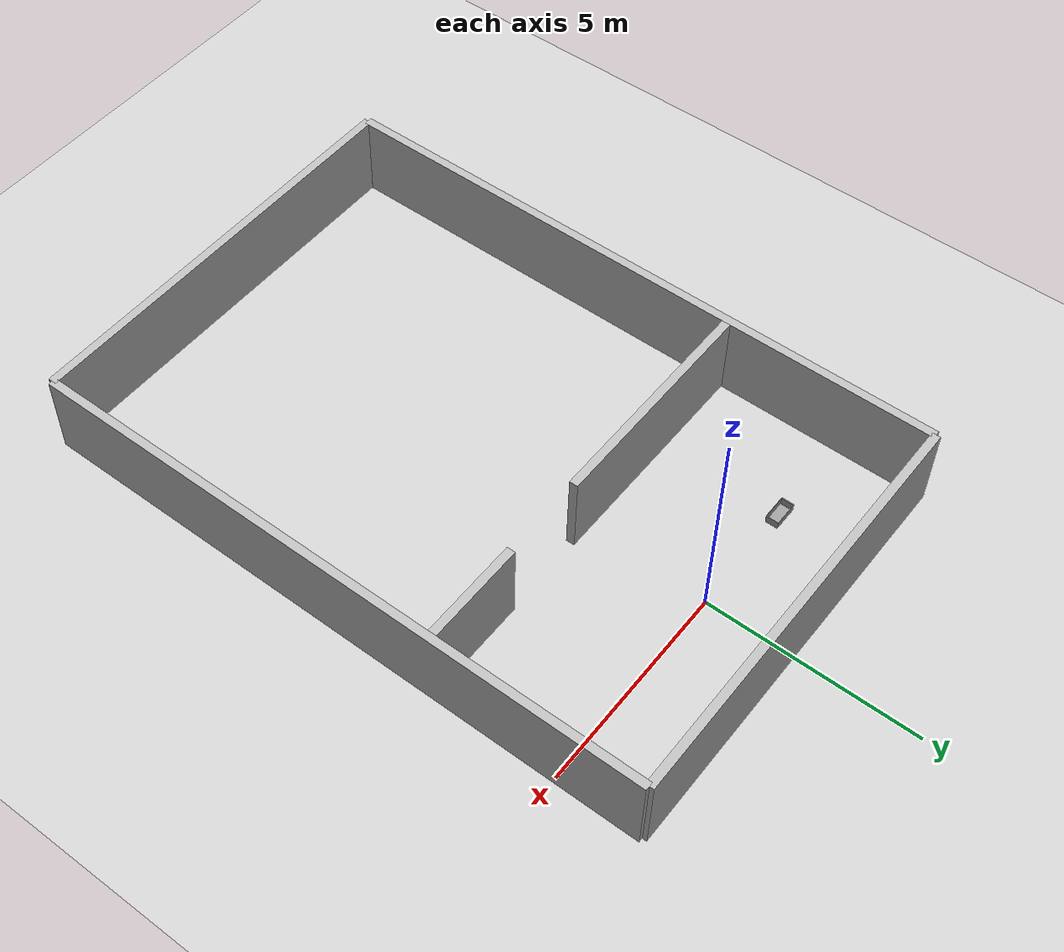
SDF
<sdf version="1.7">
 <world name="default">
  <physics type="ode">
   <ode>
    <solver>
     <type>quick</type>
     <iters>20</iters>
     <sor>1</sor>
     <use_dynamic_moi_rescaling>0</use_dynamic_moi_rescaling>
    </solver>
    <constraints>
     <cfm>0</cfm>
     <erp>0.2</erp>
     <contact_max_correcting_vel>100</contact_max_correcting_vel>
     <contact_surface_layer>0</contact_surface_layer>
    </constraints>
   </ode>
   <real_time_update_rate>1000</real_time_update_rate>
   <max_step_size>0.001</max_step_size>
   <real_time_factor>1</real_time_factor>
   <max_contacts>20</max_contacts>
  </physics>
  <light name="sun" type="directional">
   <pose>0 0 10 0 -0 0</pose>
   <diffuse>0.8 0.8 0.8 1</diffuse>
   <specular>0.2 0.2 0.2 1</specular>
   <attenuation>
    <range>1000</range>
    <constant>0.9</constant>
    <linear>0.01</linear>
    <quadratic>0.001</quadratic>
   </attenuation>
   <direction>0.5 0.1 -0.9</direction>
   <spot><inner_angle>0</inner_angle><outer_angle>0</outer_angle><falloff>0</falloff></spot>
  </light>
  <model name="ground_plane">
   <static>1</static>
   <link name="link">
    <collision name="collision">
     <geometry><plane><normal>0 0 1</normal><size>100 100</size></plane></geometry>
     <surface><friction><ode><mu>100</mu><mu2>50</mu2></ode></friction></surface>
    </collision>
    <visual name="visual">
     <cast_shadows>0</cast_shadows>
     <geometry><plane><normal>0 0 1</normal><size>100 100</size></plane></geometry>
     <material>
      <script><uri>file://media/materials/scripts/gazebo.material</uri><name>Gazebo/Grey</name></script>
     </material>
    </visual>
    <velocity_decay><linear>0</linear><angular>0</angular></velocity_decay>
   </link>
  </model>
  <model name="wall_1_model">
   <pose>0 -13 1 0 -0 0</pose>
   <static>1</static>
   <link name="wall_1_body">
    <inertial>
     <mass>1</mass>
     <inertia><ixx>1</ixx><ixy>0</ixy><ixz>0</ixz><iyy>1</iyy><iyz>0</iyz><izz>1</izz></inertia>
    </inertial>
    <collision name="collision"><geometry><box><size>10 0.2 2</size></box></geometry></collision>
    <visual name="visual"><geometry><box><size>10 0.2 2</size></box></geometry></visual>
    <velocity_decay><linear>0</linear><angular>0</angular></velocity_decay>
   </link>
  </model>
  <model name="wall_2_model">
   <pose>0 2 1 0 -0 0</pose>
   <static>1</static>
   <link name="wall_2_body">
    <inertial>
     <mass>1</mass>
     <inertia><ixx>1</ixx><ixy>0</ixy><ixz>0</ixz><iyy>1</iyy><iyz>0</iyz><izz>1</izz></inertia>
    </inertial>
    <collision name="collision"><geometry><box><size>10 0.2 2</size></box></geometry></collision>
    <visual name="visual"><geometry><box><size>10 0.2 2</size></box></geometry></visual>
    <velocity_decay><linear>0</linear><angular>0</angular></velocity_decay>
   </link>
  </model>
  <model name="wall_3_model">
   <pose>-5 -5.5 1 0 -0 0</pose>
   <static>1</static>
   <link name="wall_3_body">
    <inertial>
     <mass>1</mass>
     <inertia><ixx>1</ixx><ixy>0</ixy><ixz>0</ixz><iyy>1</iyy><iyz>0</iyz><izz>1</izz></inertia>
    </inertial>
    <collision name="collision"><geometry><box><size>0.2 15 2</size></box></geometry></collision>
    <visual name="visual"><geometry><box><size>0.2 15 2</size></box></geometry></visual>
    <velocity_decay><linear>0</linear><angular>0</angular></velocity_decay>
   </link>
  </model>
  <model name="wall_4_model">
   <pose>5 -5.5 1 0 -0 0</pose>
   <static>1</static>
   <link name="wall_4_body">
    <inertial>
     <mass>1</mass>
     <inertia><ixx>1</ixx><ixy>0</ixy><ixz>0</ixz><iyy>1</iyy><iyz>0</iyz><izz>1</izz></inertia>
    </inertial>
    <collision name="collision"><geometry><box><size>0.2 15 2</size></box></geometry></collision>
    <visual name="visual"><geometry><box><size>0.2 15 2</size></box></geometry></visual>
    <velocity_decay><linear>0</linear><angular>0</angular></velocity_decay>
   </link>
  </model>
  <model name="wall_5_model">
   <pose>-2.25 -3 1 0 -0 0</pose>
   <static>1</static>
   <link name="wall_5_body">
    <inertial>
     <mass>1</mass>
     <inertia><ixx>1</ixx><ixy>0</ixy><ixz>0</ixz><iyy>1</iyy><iyz>0</iyz><izz>1</izz></inertia>
    </inertial>
    <collision name="collision"><geometry><box><size>5.5 0.2 2</size></box></geometry></collision>
    <visual name="visual"><geometry><box><size>5.5 0.2 2</size></box></geometry></visual>
    <velocity_decay><linear>0</linear><angular>0</angular></velocity_decay>
   </link>
  </model>
  <model name="wall_6_model">
   <pose>3.75 -3 1 0 -0 0</pose>
   <static>1</static>
   <link name="wall_6_body">
    <inertial>
     <mass>1</mass>
     <inertia><ixx>1</ixx><ixy>0</ixy><ixz>0</ixz><iyy>1</iyy><iyz>0</iyz><izz>1</izz></inertia>
    </inertial>
    <collision name="collision"><geometry><box><size>2.5 0.2 2</size></box></geometry></collision>
    <visual name="visual"><geometry><box><size>2.5 0.2 2</size></box></geometry></visual>
    <velocity_decay><linear>0</linear><angular>0</angular></velocity_decay>
   </link>
  </model>
  <scene><ambient>0.2 0.2 0.2 1</ambient><background>0.7 0.7 0.7 1</background><shadows>1</shadows></scene>
  <gravity>0 0 -9.81</gravity>
  <magnetic_field>6e-06 2.3e-05 -4.2e-05</magnetic_field>
  <atmosphere type="adiabatic"/>
  <spherical_coordinates>
   <surface_model>EARTH_WGS84</surface_model>
   <latitude_deg>0</latitude_deg>
   <longitude_deg>0</longitude_deg>
   <elevation>0</elevation>
   <heading_deg>0</heading_deg>
  </spherical_coordinates>
  <model name="dropbox">
   <link name="link_0">
    <pose>0 -0 0 0 0 -1.56873</pose>
    <inertial>
     <mass>1</mass>
     <inertia>
      <ixx>0.166667</ixx>
      <ixy>0</ixy>
      <ixz>0</ixz>
      <iyy>0.166667</iyy>
      <iyz>0</iyz>
      <izz>0.166667</izz>
     </inertia>
    </inertial>
    <visual name="visual">
     <geometry>
      <mesh>
       <uri>/home/andrea/catkin_ws/src/turtlex/turtlex_gazebo/models/dropbox/meshes/dropbox.dae</uri>
       <scale>1 1 1</scale>
      </mesh>
     </geometry>
     <material>
      <lighting>1</lighting>
      <script><uri>file://media/materials/scripts/gazebo.material</uri><name>Gazebo/Grey</name></script>
      <ambient>0.3 0.3 0.3 1</ambient>
      <diffuse>0.7 0.7 0.7 1</diffuse>
      <specular>0.01 0.01 0.01 1</specular>
      <emissive>0 0 0 1</emissive>
     </material>
    </visual>
    <collision name="collision">
     <geometry>
      <mesh>
       <uri>/home/andrea/catkin_ws/src/turtlex/turtlex_gazebo/models/dropbox/meshes/dropbox.dae</uri>
       <scale>1 1 1</scale>
      </mesh>
     </geometry>
     <surface>
      <friction>
       <ode><mu>1</mu><mu2>1</mu2><fdir1>0 0 0</fdir1><slip1>0</slip1><slip2>0</slip2></ode>
       <torsional>
        <coefficient>1</coefficient>
        <patch_radius>0</patch_radius>
        <surface_radius>0</surface_radius>
        <use_patch_radius>1</use_patch_radius>
        <ode><slip>0</slip></ode>
       </torsional>
      </friction>
      <bounce><restitution_coefficient>0</restitution_coefficient><threshold>1e+06</threshold></bounce>
      <contact>
       <collide_without_contact>0</collide_without_contact>
       <collide_without_contact_bitmask>1</collide_without_contact_bitmask>
       <collide_bitmask>1</collide_bitmask>
       <ode>
        <soft_cfm>0</soft_cfm>
        <soft_erp>0.2</soft_erp>
        <kp>1e+13</kp>
        <kd>1</kd>
        <max_vel>0.01</max_vel>
        <min_depth>0</min_depth>
       </ode>
       <bullet>
        <split_impulse>1</split_impulse>
        <split_impulse_penetration_threshold>-0.01</split_impulse_penetration_threshold>
        <soft_cfm>0</soft_cfm>
        <soft_erp>0.2</soft_erp>
        <kp>1e+13</kp>
        <kd>1</kd>
       </bullet>
      </contact>
     </surface>
    </collision>
   </link>
   <static>1</static>
   <pose>-2.72116 -3.6e-05 0 0 -0 0</pose>
  </model>
 </world>
</sdf>
